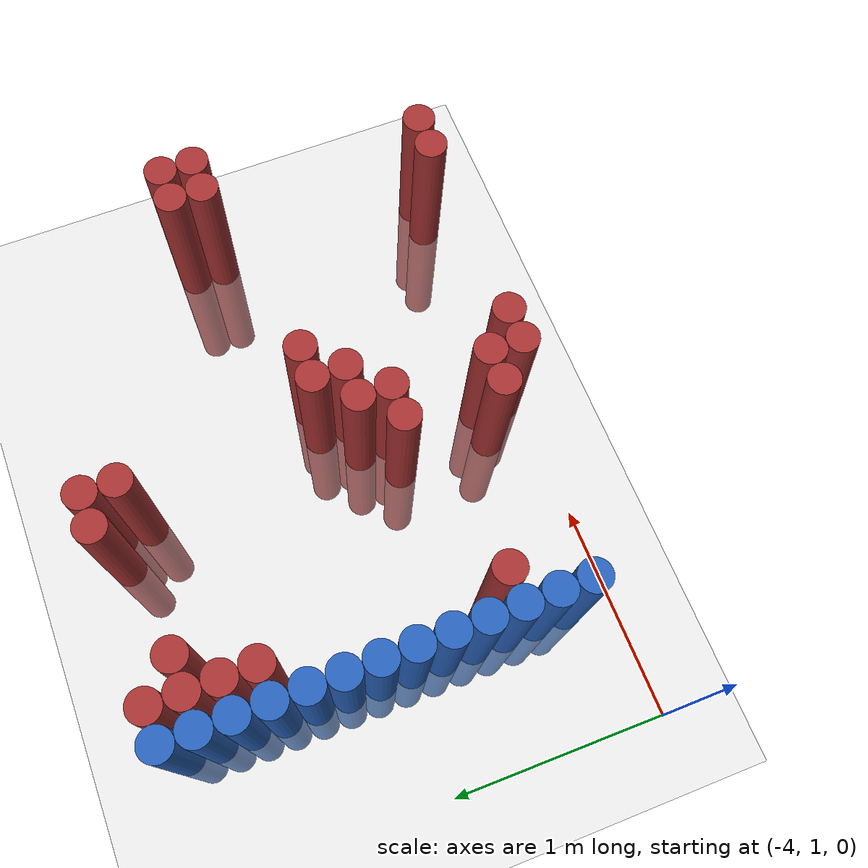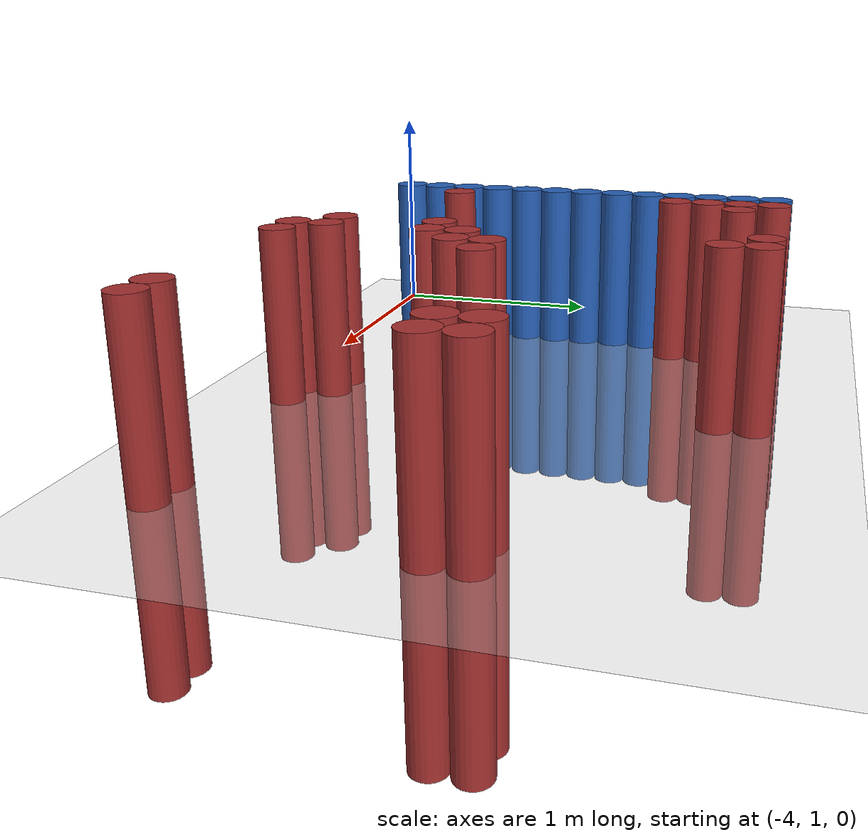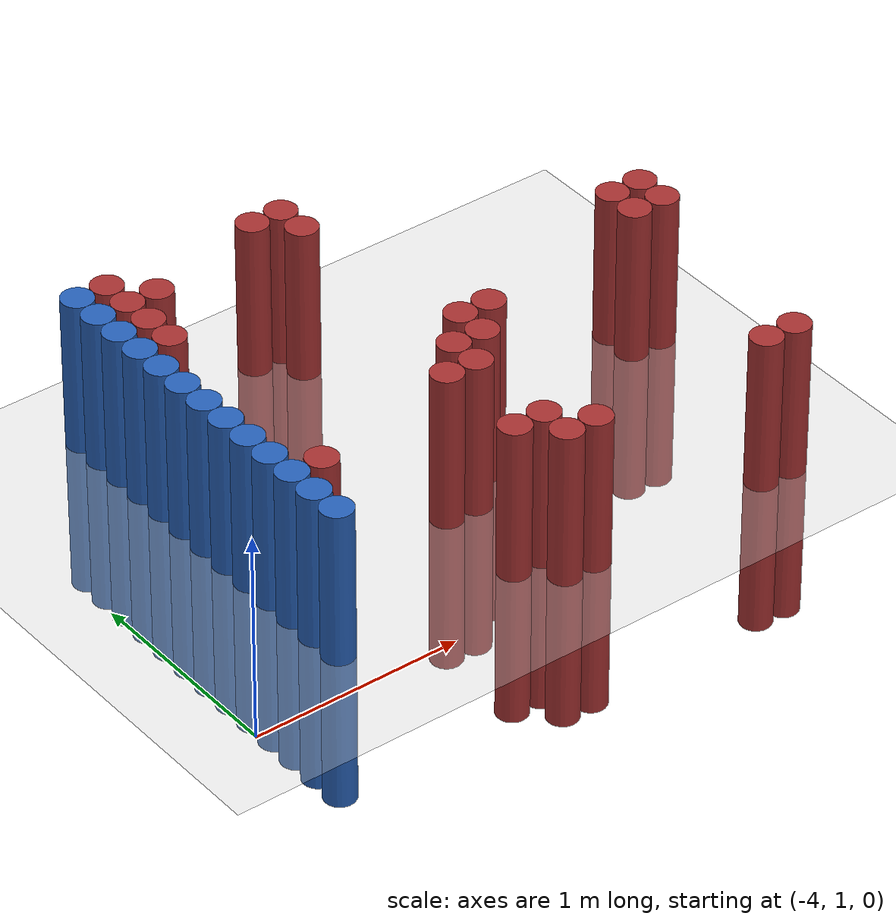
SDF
<sdf version="1.6">
 <world name="default">
  <model name="ground_plane">
   <static>1</static>
   <link name="link">
    <collision name="collision">
     <geometry><plane><normal>0 0 1</normal><size>100 100</size></plane></geometry>
     <surface><friction><ode><mu>100</mu><mu2>50</mu2></ode></friction></surface>
    </collision>
    <visual name="visual">
     <cast_shadows>0</cast_shadows>
     <geometry><plane><normal>0 0 1</normal><size>100 100</size></plane></geometry>
     <material>
      <script><uri>file://media/materials/scripts/gazebo.material</uri><name>Gazebo/Grey</name></script>
     </material>
    </visual>
   </link>
  </model>
  <model name="unit_cylinder_131">
   <static>1</static>
   <pose>-3.425000 1.225000 0.000000 0.000000 0.000000 0.000000</pose>
   <link name="link">
    <inertial>
     <mass>1</mass>
     <inertia><ixx>0.145833</ixx><ixy>0</ixy><ixz>0</ixz><iyy>0.145833</iyy><iyz>0</iyz><izz>0.125</izz></inertia>
    </inertial>
    <collision name="collision">
     <geometry><cylinder><radius>0.075000</radius><length>1.5</length></cylinder></geometry>
    </collision>
    <visual name="visual">
     <geometry><cylinder><radius>0.075000</radius><length>1.5</length></cylinder></geometry>
     <material>
      <ambient>0.152000 0.379000 0.720000 1</ambient>
      <diffuse>0.152000 0.379000 0.720000 1</diffuse>
     </material>
     <material>
      <script><name>Gazebo/Grey</name><uri>file://media/materials/scripts/gazebo.material</uri></script>
     </material>
    </visual>
   </link>
  </model>
  <model name="unit_cylinder_133">
   <static>1</static>
   <pose>-3.425000 1.375000 0.000000 0.000000 0.000000 0.000000</pose>
   <link name="link">
    <inertial>
     <mass>1</mass>
     <inertia><ixx>0.145833</ixx><ixy>0</ixy><ixz>0</ixz><iyy>0.145833</iyy><iyz>0</iyz><izz>0.125</izz></inertia>
    </inertial>
    <collision name="collision">
     <geometry><cylinder><radius>0.075000</radius><length>1.5</length></cylinder></geometry>
    </collision>
    <visual name="visual">
     <geometry><cylinder><radius>0.075000</radius><length>1.5</length></cylinder></geometry>
     <material>
      <ambient>0.152000 0.379000 0.720000 1</ambient>
      <diffuse>0.152000 0.379000 0.720000 1</diffuse>
     </material>
     <material>
      <script><name>Gazebo/Grey</name><uri>file://media/materials/scripts/gazebo.material</uri></script>
     </material>
    </visual>
   </link>
  </model>
  <model name="unit_cylinder_135">
   <static>1</static>
   <pose>-3.425000 1.525000 0.000000 0.000000 0.000000 0.000000</pose>
   <link name="link">
    <inertial>
     <mass>1</mass>
     <inertia><ixx>0.145833</ixx><ixy>0</ixy><ixz>0</ixz><iyy>0.145833</iyy><iyz>0</iyz><izz>0.125</izz></inertia>
    </inertial>
    <collision name="collision">
     <geometry><cylinder><radius>0.075000</radius><length>1.5</length></cylinder></geometry>
    </collision>
    <visual name="visual">
     <geometry><cylinder><radius>0.075000</radius><length>1.5</length></cylinder></geometry>
     <material>
      <ambient>0.152000 0.379000 0.720000 1</ambient>
      <diffuse>0.152000 0.379000 0.720000 1</diffuse>
     </material>
     <material>
      <script><name>Gazebo/Grey</name><uri>file://media/materials/scripts/gazebo.material</uri></script>
     </material>
    </visual>
   </link>
  </model>
  <model name="unit_cylinder_137">
   <static>1</static>
   <pose>-3.425000 1.675000 0.000000 0.000000 0.000000 0.000000</pose>
   <link name="link">
    <inertial>
     <mass>1</mass>
     <inertia><ixx>0.145833</ixx><ixy>0</ixy><ixz>0</ixz><iyy>0.145833</iyy><iyz>0</iyz><izz>0.125</izz></inertia>
    </inertial>
    <collision name="collision">
     <geometry><cylinder><radius>0.075000</radius><length>1.5</length></cylinder></geometry>
    </collision>
    <visual name="visual">
     <geometry><cylinder><radius>0.075000</radius><length>1.5</length></cylinder></geometry>
     <material>
      <ambient>0.152000 0.379000 0.720000 1</ambient>
      <diffuse>0.152000 0.379000 0.720000 1</diffuse>
     </material>
     <material>
      <script><name>Gazebo/Grey</name><uri>file://media/materials/scripts/gazebo.material</uri></script>
     </material>
    </visual>
   </link>
  </model>
  <model name="unit_cylinder_139">
   <static>1</static>
   <pose>-3.425000 1.825000 0.000000 0.000000 0.000000 0.000000</pose>
   <link name="link">
    <inertial>
     <mass>1</mass>
     <inertia><ixx>0.145833</ixx><ixy>0</ixy><ixz>0</ixz><iyy>0.145833</iyy><iyz>0</iyz><izz>0.125</izz></inertia>
    </inertial>
    <collision name="collision">
     <geometry><cylinder><radius>0.075000</radius><length>1.5</length></cylinder></geometry>
    </collision>
    <visual name="visual">
     <geometry><cylinder><radius>0.075000</radius><length>1.5</length></cylinder></geometry>
     <material>
      <ambient>0.152000 0.379000 0.720000 1</ambient>
      <diffuse>0.152000 0.379000 0.720000 1</diffuse>
     </material>
     <material>
      <script><name>Gazebo/Grey</name><uri>file://media/materials/scripts/gazebo.material</uri></script>
     </material>
    </visual>
   </link>
  </model>
  <model name="unit_cylinder_141">
   <static>1</static>
   <pose>-3.425000 1.975000 0.000000 0.000000 0.000000 0.000000</pose>
   <link name="link">
    <inertial>
     <mass>1</mass>
     <inertia><ixx>0.145833</ixx><ixy>0</ixy><ixz>0</ixz><iyy>0.145833</iyy><iyz>0</iyz><izz>0.125</izz></inertia>
    </inertial>
    <collision name="collision">
     <geometry><cylinder><radius>0.075000</radius><length>1.5</length></cylinder></geometry>
    </collision>
    <visual name="visual">
     <geometry><cylinder><radius>0.075000</radius><length>1.5</length></cylinder></geometry>
     <material>
      <ambient>0.152000 0.379000 0.720000 1</ambient>
      <diffuse>0.152000 0.379000 0.720000 1</diffuse>
     </material>
     <material>
      <script><name>Gazebo/Grey</name><uri>file://media/materials/scripts/gazebo.material</uri></script>
     </material>
    </visual>
   </link>
  </model>
  <model name="unit_cylinder_143">
   <static>1</static>
   <pose>-3.425000 2.125000 0.000000 0.000000 0.000000 0.000000</pose>
   <link name="link">
    <inertial>
     <mass>1</mass>
     <inertia><ixx>0.145833</ixx><ixy>0</ixy><ixz>0</ixz><iyy>0.145833</iyy><iyz>0</iyz><izz>0.125</izz></inertia>
    </inertial>
    <collision name="collision">
     <geometry><cylinder><radius>0.075000</radius><length>1.5</length></cylinder></geometry>
    </collision>
    <visual name="visual">
     <geometry><cylinder><radius>0.075000</radius><length>1.5</length></cylinder></geometry>
     <material>
      <ambient>0.152000 0.379000 0.720000 1</ambient>
      <diffuse>0.152000 0.379000 0.720000 1</diffuse>
     </material>
     <material>
      <script><name>Gazebo/Grey</name><uri>file://media/materials/scripts/gazebo.material</uri></script>
     </material>
    </visual>
   </link>
  </model>
  <model name="unit_cylinder_145">
   <static>1</static>
   <pose>-3.425000 2.275000 0.000000 0.000000 0.000000 0.000000</pose>
   <link name="link">
    <inertial>
     <mass>1</mass>
     <inertia><ixx>0.145833</ixx><ixy>0</ixy><ixz>0</ixz><iyy>0.145833</iyy><iyz>0</iyz><izz>0.125</izz></inertia>
    </inertial>
    <collision name="collision">
     <geometry><cylinder><radius>0.075000</radius><length>1.5</length></cylinder></geometry>
    </collision>
    <visual name="visual">
     <geometry><cylinder><radius>0.075000</radius><length>1.5</length></cylinder></geometry>
     <material>
      <ambient>0.152000 0.379000 0.720000 1</ambient>
      <diffuse>0.152000 0.379000 0.720000 1</diffuse>
     </material>
     <material>
      <script><name>Gazebo/Grey</name><uri>file://media/materials/scripts/gazebo.material</uri></script>
     </material>
    </visual>
   </link>
  </model>
  <model name="unit_cylinder_147">
   <static>1</static>
   <pose>-3.425000 2.425000 0.000000 0.000000 0.000000 0.000000</pose>
   <link name="link">
    <inertial>
     <mass>1</mass>
     <inertia><ixx>0.145833</ixx><ixy>0</ixy><ixz>0</ixz><iyy>0.145833</iyy><iyz>0</iyz><izz>0.125</izz></inertia>
    </inertial>
    <collision name="collision">
     <geometry><cylinder><radius>0.075000</radius><length>1.5</length></cylinder></geometry>
    </collision>
    <visual name="visual">
     <geometry><cylinder><radius>0.075000</radius><length>1.5</length></cylinder></geometry>
     <material>
      <ambient>0.152000 0.379000 0.720000 1</ambient>
      <diffuse>0.152000 0.379000 0.720000 1</diffuse>
     </material>
     <material>
      <script><name>Gazebo/Grey</name><uri>file://media/materials/scripts/gazebo.material</uri></script>
     </material>
    </visual>
   </link>
  </model>
  <model name="unit_cylinder_149">
   <static>1</static>
   <pose>-3.425000 2.575000 0.000000 0.000000 0.000000 0.000000</pose>
   <link name="link">
    <inertial>
     <mass>1</mass>
     <inertia><ixx>0.145833</ixx><ixy>0</ixy><ixz>0</ixz><iyy>0.145833</iyy><iyz>0</iyz><izz>0.125</izz></inertia>
    </inertial>
    <collision name="collision">
     <geometry><cylinder><radius>0.075000</radius><length>1.5</length></cylinder></geometry>
    </collision>
    <visual name="visual">
     <geometry><cylinder><radius>0.075000</radius><length>1.5</length></cylinder></geometry>
     <material>
      <ambient>0.152000 0.379000 0.720000 1</ambient>
      <diffuse>0.152000 0.379000 0.720000 1</diffuse>
     </material>
     <material>
      <script><name>Gazebo/Grey</name><uri>file://media/materials/scripts/gazebo.material</uri></script>
     </material>
    </visual>
   </link>
  </model>
  <model name="unit_cylinder_151">
   <static>1</static>
   <pose>-3.425000 2.725000 0.000000 0.000000 0.000000 0.000000</pose>
   <link name="link">
    <inertial>
     <mass>1</mass>
     <inertia><ixx>0.145833</ixx><ixy>0</ixy><ixz>0</ixz><iyy>0.145833</iyy><iyz>0</iyz><izz>0.125</izz></inertia>
    </inertial>
    <collision name="collision">
     <geometry><cylinder><radius>0.075000</radius><length>1.5</length></cylinder></geometry>
    </collision>
    <visual name="visual">
     <geometry><cylinder><radius>0.075000</radius><length>1.5</length></cylinder></geometry>
     <material>
      <ambient>0.152000 0.379000 0.720000 1</ambient>
      <diffuse>0.152000 0.379000 0.720000 1</diffuse>
     </material>
     <material>
      <script><name>Gazebo/Grey</name><uri>file://media/materials/scripts/gazebo.material</uri></script>
     </material>
    </visual>
   </link>
  </model>
  <model name="unit_cylinder_153">
   <static>1</static>
   <pose>-3.425000 2.875000 0.000000 0.000000 0.000000 0.000000</pose>
   <link name="link">
    <inertial>
     <mass>1</mass>
     <inertia><ixx>0.145833</ixx><ixy>0</ixy><ixz>0</ixz><iyy>0.145833</iyy><iyz>0</iyz><izz>0.125</izz></inertia>
    </inertial>
    <collision name="collision">
     <geometry><cylinder><radius>0.075000</radius><length>1.5</length></cylinder></geometry>
    </collision>
    <visual name="visual">
     <geometry><cylinder><radius>0.075000</radius><length>1.5</length></cylinder></geometry>
     <material>
      <ambient>0.152000 0.379000 0.720000 1</ambient>
      <diffuse>0.152000 0.379000 0.720000 1</diffuse>
     </material>
     <material>
      <script><name>Gazebo/Grey</name><uri>file://media/materials/scripts/gazebo.material</uri></script>
     </material>
    </visual>
   </link>
  </model>
  <model name="unit_cylinder_155">
   <static>1</static>
   <pose>-3.425000 3.025000 0.000000 0.000000 0.000000 0.000000</pose>
   <link name="link">
    <inertial>
     <mass>1</mass>
     <inertia><ixx>0.145833</ixx><ixy>0</ixy><ixz>0</ixz><iyy>0.145833</iyy><iyz>0</iyz><izz>0.125</izz></inertia>
    </inertial>
    <collision name="collision">
     <geometry><cylinder><radius>0.075000</radius><length>1.5</length></cylinder></geometry>
    </collision>
    <visual name="visual">
     <geometry><cylinder><radius>0.075000</radius><length>1.5</length></cylinder></geometry>
     <material>
      <ambient>0.152000 0.379000 0.720000 1</ambient>
      <diffuse>0.152000 0.379000 0.720000 1</diffuse>
     </material>
     <material>
      <script><name>Gazebo/Grey</name><uri>file://media/materials/scripts/gazebo.material</uri></script>
     </material>
    </visual>
   </link>
  </model>
  <model name="unit_cylinder_229">
   <static>1</static>
   <pose>-3.425000 1.225000 0.000000 0.000000 0.000000 0.000000</pose>
   <link name="link">
    <inertial>
     <mass>1</mass>
     <inertia><ixx>0.145833</ixx><ixy>0</ixy><ixz>0</ixz><iyy>0.145833</iyy><iyz>0</iyz><izz>0.125</izz></inertia>
    </inertial>
    <collision name="collision">
     <geometry><cylinder><radius>0.075000</radius><length>1.5</length></cylinder></geometry>
    </collision>
    <visual name="visual">
     <geometry><cylinder><radius>0.075000</radius><length>1.5</length></cylinder></geometry>
     <material>
      <ambient>0.152000 0.379000 0.720000 1</ambient>
      <diffuse>0.152000 0.379000 0.720000 1</diffuse>
     </material>
     <material>
      <script><name>Gazebo/Grey</name><uri>file://media/materials/scripts/gazebo.material</uri></script>
     </material>
    </visual>
   </link>
  </model>
  <model name="unit_cylinder_230">
   <static>1</static>
   <pose>-3.425000 1.375000 0.000000 0.000000 0.000000 0.000000</pose>
   <link name="link">
    <inertial>
     <mass>1</mass>
     <inertia><ixx>0.145833</ixx><ixy>0</ixy><ixz>0</ixz><iyy>0.145833</iyy><iyz>0</iyz><izz>0.125</izz></inertia>
    </inertial>
    <collision name="collision">
     <geometry><cylinder><radius>0.075000</radius><length>1.5</length></cylinder></geometry>
    </collision>
    <visual name="visual">
     <geometry><cylinder><radius>0.075000</radius><length>1.5</length></cylinder></geometry>
     <material>
      <ambient>0.152000 0.379000 0.720000 1</ambient>
      <diffuse>0.152000 0.379000 0.720000 1</diffuse>
     </material>
     <material>
      <script><name>Gazebo/Grey</name><uri>file://media/materials/scripts/gazebo.material</uri></script>
     </material>
    </visual>
   </link>
  </model>
  <model name="unit_cylinder_231">
   <static>1</static>
   <pose>-3.425000 1.525000 0.000000 0.000000 0.000000 0.000000</pose>
   <link name="link">
    <inertial>
     <mass>1</mass>
     <inertia><ixx>0.145833</ixx><ixy>0</ixy><ixz>0</ixz><iyy>0.145833</iyy><iyz>0</iyz><izz>0.125</izz></inertia>
    </inertial>
    <collision name="collision">
     <geometry><cylinder><radius>0.075000</radius><length>1.5</length></cylinder></geometry>
    </collision>
    <visual name="visual">
     <geometry><cylinder><radius>0.075000</radius><length>1.5</length></cylinder></geometry>
     <material>
      <ambient>0.152000 0.379000 0.720000 1</ambient>
      <diffuse>0.152000 0.379000 0.720000 1</diffuse>
     </material>
     <material>
      <script><name>Gazebo/Grey</name><uri>file://media/materials/scripts/gazebo.material</uri></script>
     </material>
    </visual>
   </link>
  </model>
  <model name="unit_cylinder_232">
   <static>1</static>
   <pose>-3.425000 1.675000 0.000000 0.000000 0.000000 0.000000</pose>
   <link name="link">
    <inertial>
     <mass>1</mass>
     <inertia><ixx>0.145833</ixx><ixy>0</ixy><ixz>0</ixz><iyy>0.145833</iyy><iyz>0</iyz><izz>0.125</izz></inertia>
    </inertial>
    <collision name="collision">
     <geometry><cylinder><radius>0.075000</radius><length>1.5</length></cylinder></geometry>
    </collision>
    <visual name="visual">
     <geometry><cylinder><radius>0.075000</radius><length>1.5</length></cylinder></geometry>
     <material>
      <ambient>0.152000 0.379000 0.720000 1</ambient>
      <diffuse>0.152000 0.379000 0.720000 1</diffuse>
     </material>
     <material>
      <script><name>Gazebo/Grey</name><uri>file://media/materials/scripts/gazebo.material</uri></script>
     </material>
    </visual>
   </link>
  </model>
  <model name="unit_cylinder_233">
   <static>1</static>
   <pose>-3.425000 1.825000 0.000000 0.000000 0.000000 0.000000</pose>
   <link name="link">
    <inertial>
     <mass>1</mass>
     <inertia><ixx>0.145833</ixx><ixy>0</ixy><ixz>0</ixz><iyy>0.145833</iyy><iyz>0</iyz><izz>0.125</izz></inertia>
    </inertial>
    <collision name="collision">
     <geometry><cylinder><radius>0.075000</radius><length>1.5</length></cylinder></geometry>
    </collision>
    <visual name="visual">
     <geometry><cylinder><radius>0.075000</radius><length>1.5</length></cylinder></geometry>
     <material>
      <ambient>0.152000 0.379000 0.720000 1</ambient>
      <diffuse>0.152000 0.379000 0.720000 1</diffuse>
     </material>
     <material>
      <script><name>Gazebo/Grey</name><uri>file://media/materials/scripts/gazebo.material</uri></script>
     </material>
    </visual>
   </link>
  </model>
  <model name="unit_cylinder_234">
   <static>1</static>
   <pose>-3.425000 1.975000 0.000000 0.000000 0.000000 0.000000</pose>
   <link name="link">
    <inertial>
     <mass>1</mass>
     <inertia><ixx>0.145833</ixx><ixy>0</ixy><ixz>0</ixz><iyy>0.145833</iyy><iyz>0</iyz><izz>0.125</izz></inertia>
    </inertial>
    <collision name="collision">
     <geometry><cylinder><radius>0.075000</radius><length>1.5</length></cylinder></geometry>
    </collision>
    <visual name="visual">
     <geometry><cylinder><radius>0.075000</radius><length>1.5</length></cylinder></geometry>
     <material>
      <ambient>0.152000 0.379000 0.720000 1</ambient>
      <diffuse>0.152000 0.379000 0.720000 1</diffuse>
     </material>
     <material>
      <script><name>Gazebo/Grey</name><uri>file://media/materials/scripts/gazebo.material</uri></script>
     </material>
    </visual>
   </link>
  </model>
  <model name="unit_cylinder_235">
   <static>1</static>
   <pose>-3.425000 2.125000 0.000000 0.000000 0.000000 0.000000</pose>
   <link name="link">
    <inertial>
     <mass>1</mass>
     <inertia><ixx>0.145833</ixx><ixy>0</ixy><ixz>0</ixz><iyy>0.145833</iyy><iyz>0</iyz><izz>0.125</izz></inertia>
    </inertial>
    <collision name="collision">
     <geometry><cylinder><radius>0.075000</radius><length>1.5</length></cylinder></geometry>
    </collision>
    <visual name="visual">
     <geometry><cylinder><radius>0.075000</radius><length>1.5</length></cylinder></geometry>
     <material>
      <ambient>0.152000 0.379000 0.720000 1</ambient>
      <diffuse>0.152000 0.379000 0.720000 1</diffuse>
     </material>
     <material>
      <script><name>Gazebo/Grey</name><uri>file://media/materials/scripts/gazebo.material</uri></script>
     </material>
    </visual>
   </link>
  </model>
  <model name="unit_cylinder_236">
   <static>1</static>
   <pose>-3.425000 2.275000 0.000000 0.000000 0.000000 0.000000</pose>
   <link name="link">
    <inertial>
     <mass>1</mass>
     <inertia><ixx>0.145833</ixx><ixy>0</ixy><ixz>0</ixz><iyy>0.145833</iyy><iyz>0</iyz><izz>0.125</izz></inertia>
    </inertial>
    <collision name="collision">
     <geometry><cylinder><radius>0.075000</radius><length>1.5</length></cylinder></geometry>
    </collision>
    <visual name="visual">
     <geometry><cylinder><radius>0.075000</radius><length>1.5</length></cylinder></geometry>
     <material>
      <ambient>0.152000 0.379000 0.720000 1</ambient>
      <diffuse>0.152000 0.379000 0.720000 1</diffuse>
     </material>
     <material>
      <script><name>Gazebo/Grey</name><uri>file://media/materials/scripts/gazebo.material</uri></script>
     </material>
    </visual>
   </link>
  </model>
  <model name="unit_cylinder_237">
   <static>1</static>
   <pose>-3.425000 2.425000 0.000000 0.000000 0.000000 0.000000</pose>
   <link name="link">
    <inertial>
     <mass>1</mass>
     <inertia><ixx>0.145833</ixx><ixy>0</ixy><ixz>0</ixz><iyy>0.145833</iyy><iyz>0</iyz><izz>0.125</izz></inertia>
    </inertial>
    <collision name="collision">
     <geometry><cylinder><radius>0.075000</radius><length>1.5</length></cylinder></geometry>
    </collision>
    <visual name="visual">
     <geometry><cylinder><radius>0.075000</radius><length>1.5</length></cylinder></geometry>
     <material>
      <ambient>0.152000 0.379000 0.720000 1</ambient>
      <diffuse>0.152000 0.379000 0.720000 1</diffuse>
     </material>
     <material>
      <script><name>Gazebo/Grey</name><uri>file://media/materials/scripts/gazebo.material</uri></script>
     </material>
    </visual>
   </link>
  </model>
  <model name="unit_cylinder_238">
   <static>1</static>
   <pose>-3.425000 2.575000 0.000000 0.000000 0.000000 0.000000</pose>
   <link name="link">
    <inertial>
     <mass>1</mass>
     <inertia><ixx>0.145833</ixx><ixy>0</ixy><ixz>0</ixz><iyy>0.145833</iyy><iyz>0</iyz><izz>0.125</izz></inertia>
    </inertial>
    <collision name="collision">
     <geometry><cylinder><radius>0.075000</radius><length>1.5</length></cylinder></geometry>
    </collision>
    <visual name="visual">
     <geometry><cylinder><radius>0.075000</radius><length>1.5</length></cylinder></geometry>
     <material>
      <ambient>0.152000 0.379000 0.720000 1</ambient>
      <diffuse>0.152000 0.379000 0.720000 1</diffuse>
     </material>
     <material>
      <script><name>Gazebo/Grey</name><uri>file://media/materials/scripts/gazebo.material</uri></script>
     </material>
    </visual>
   </link>
  </model>
  <model name="unit_cylinder_239">
   <static>1</static>
   <pose>-3.425000 2.725000 0.000000 0.000000 0.000000 0.000000</pose>
   <link name="link">
    <inertial>
     <mass>1</mass>
     <inertia><ixx>0.145833</ixx><ixy>0</ixy><ixz>0</ixz><iyy>0.145833</iyy><iyz>0</iyz><izz>0.125</izz></inertia>
    </inertial>
    <collision name="collision">
     <geometry><cylinder><radius>0.075000</radius><length>1.5</length></cylinder></geometry>
    </collision>
    <visual name="visual">
     <geometry><cylinder><radius>0.075000</radius><length>1.5</length></cylinder></geometry>
     <material>
      <ambient>0.152000 0.379000 0.720000 1</ambient>
      <diffuse>0.152000 0.379000 0.720000 1</diffuse>
     </material>
     <material>
      <script><name>Gazebo/Grey</name><uri>file://media/materials/scripts/gazebo.material</uri></script>
     </material>
    </visual>
   </link>
  </model>
  <model name="unit_cylinder_240">
   <static>1</static>
   <pose>-3.425000 2.875000 0.000000 0.000000 0.000000 0.000000</pose>
   <link name="link">
    <inertial>
     <mass>1</mass>
     <inertia><ixx>0.145833</ixx><ixy>0</ixy><ixz>0</ixz><iyy>0.145833</iyy><iyz>0</iyz><izz>0.125</izz></inertia>
    </inertial>
    <collision name="collision">
     <geometry><cylinder><radius>0.075000</radius><length>1.5</length></cylinder></geometry>
    </collision>
    <visual name="visual">
     <geometry><cylinder><radius>0.075000</radius><length>1.5</length></cylinder></geometry>
     <material>
      <ambient>0.152000 0.379000 0.720000 1</ambient>
      <diffuse>0.152000 0.379000 0.720000 1</diffuse>
     </material>
     <material>
      <script><name>Gazebo/Grey</name><uri>file://media/materials/scripts/gazebo.material</uri></script>
     </material>
    </visual>
   </link>
  </model>
  <model name="unit_cylinder_241">
   <static>1</static>
   <pose>-3.425000 3.025000 0.000000 0.000000 0.000000 0.000000</pose>
   <link name="link">
    <inertial>
     <mass>1</mass>
     <inertia><ixx>0.145833</ixx><ixy>0</ixy><ixz>0</ixz><iyy>0.145833</iyy><iyz>0</iyz><izz>0.125</izz></inertia>
    </inertial>
    <collision name="collision">
     <geometry><cylinder><radius>0.075000</radius><length>1.5</length></cylinder></geometry>
    </collision>
    <visual name="visual">
     <geometry><cylinder><radius>0.075000</radius><length>1.5</length></cylinder></geometry>
     <material>
      <ambient>0.152000 0.379000 0.720000 1</ambient>
      <diffuse>0.152000 0.379000 0.720000 1</diffuse>
     </material>
     <material>
      <script><name>Gazebo/Grey</name><uri>file://media/materials/scripts/gazebo.material</uri></script>
     </material>
    </visual>
   </link>
  </model>
  <model name="unit_cylinder_267">
   <static>1</static>
   <pose>-3.275000 1.525000 0.000000 0.000000 0.000000 0.000000</pose>
   <link name="link">
    <inertial>
     <mass>1</mass>
     <inertia><ixx>0.145833</ixx><ixy>0</ixy><ixz>0</ixz><iyy>0.145833</iyy><iyz>0</iyz><izz>0.125</izz></inertia>
    </inertial>
    <collision name="collision">
     <geometry><cylinder><radius>0.075000</radius><length>1.5</length></cylinder></geometry>
    </collision>
    <visual name="visual">
     <geometry><cylinder><radius>0.075000</radius><length>1.5</length></cylinder></geometry>
     <material>
      <ambient>0.648000 0.192000 0.192000 1</ambient>
      <diffuse>0.648000 0.192000 0.192000 1</diffuse>
     </material>
     <material>
      <script><name>Gazebo/Grey</name><uri>file://media/materials/scripts/gazebo.material</uri></script>
     </material>
    </visual>
   </link>
  </model>
  <model name="unit_cylinder_268">
   <static>1</static>
   <pose>-3.275000 2.575000 0.000000 0.000000 0.000000 0.000000</pose>
   <link name="link">
    <inertial>
     <mass>1</mass>
     <inertia><ixx>0.145833</ixx><ixy>0</ixy><ixz>0</ixz><iyy>0.145833</iyy><iyz>0</iyz><izz>0.125</izz></inertia>
    </inertial>
    <collision name="collision">
     <geometry><cylinder><radius>0.075000</radius><length>1.5</length></cylinder></geometry>
    </collision>
    <visual name="visual">
     <geometry><cylinder><radius>0.075000</radius><length>1.5</length></cylinder></geometry>
     <material>
      <ambient>0.648000 0.192000 0.192000 1</ambient>
      <diffuse>0.648000 0.192000 0.192000 1</diffuse>
     </material>
     <material>
      <script><name>Gazebo/Grey</name><uri>file://media/materials/scripts/gazebo.material</uri></script>
     </material>
    </visual>
   </link>
  </model>
  <model name="unit_cylinder_269">
   <static>1</static>
   <pose>-3.275000 2.725000 0.000000 0.000000 0.000000 0.000000</pose>
   <link name="link">
    <inertial>
     <mass>1</mass>
     <inertia><ixx>0.145833</ixx><ixy>0</ixy><ixz>0</ixz><iyy>0.145833</iyy><iyz>0</iyz><izz>0.125</izz></inertia>
    </inertial>
    <collision name="collision">
     <geometry><cylinder><radius>0.075000</radius><length>1.5</length></cylinder></geometry>
    </collision>
    <visual name="visual">
     <geometry><cylinder><radius>0.075000</radius><length>1.5</length></cylinder></geometry>
     <material>
      <ambient>0.648000 0.192000 0.192000 1</ambient>
      <diffuse>0.648000 0.192000 0.192000 1</diffuse>
     </material>
     <material>
      <script><name>Gazebo/Grey</name><uri>file://media/materials/scripts/gazebo.material</uri></script>
     </material>
    </visual>
   </link>
  </model>
  <model name="unit_cylinder_270">
   <static>1</static>
   <pose>-3.275000 2.875000 0.000000 0.000000 0.000000 0.000000</pose>
   <link name="link">
    <inertial>
     <mass>1</mass>
     <inertia><ixx>0.145833</ixx><ixy>0</ixy><ixz>0</ixz><iyy>0.145833</iyy><iyz>0</iyz><izz>0.125</izz></inertia>
    </inertial>
    <collision name="collision">
     <geometry><cylinder><radius>0.075000</radius><length>1.5</length></cylinder></geometry>
    </collision>
    <visual name="visual">
     <geometry><cylinder><radius>0.075000</radius><length>1.5</length></cylinder></geometry>
     <material>
      <ambient>0.648000 0.192000 0.192000 1</ambient>
      <diffuse>0.648000 0.192000 0.192000 1</diffuse>
     </material>
     <material>
      <script><name>Gazebo/Grey</name><uri>file://media/materials/scripts/gazebo.material</uri></script>
     </material>
    </visual>
   </link>
  </model>
  <model name="unit_cylinder_271">
   <static>1</static>
   <pose>-3.275000 3.025000 0.000000 0.000000 0.000000 0.000000</pose>
   <link name="link">
    <inertial>
     <mass>1</mass>
     <inertia><ixx>0.145833</ixx><ixy>0</ixy><ixz>0</ixz><iyy>0.145833</iyy><iyz>0</iyz><izz>0.125</izz></inertia>
    </inertial>
    <collision name="collision">
     <geometry><cylinder><radius>0.075000</radius><length>1.5</length></cylinder></geometry>
    </collision>
    <visual name="visual">
     <geometry><cylinder><radius>0.075000</radius><length>1.5</length></cylinder></geometry>
     <material>
      <ambient>0.648000 0.192000 0.192000 1</ambient>
      <diffuse>0.648000 0.192000 0.192000 1</diffuse>
     </material>
     <material>
      <script><name>Gazebo/Grey</name><uri>file://media/materials/scripts/gazebo.material</uri></script>
     </material>
    </visual>
   </link>
  </model>
  <model name="unit_cylinder_281">
   <static>1</static>
   <pose>-3.125000 2.875000 0.000000 0.000000 0.000000 0.000000</pose>
   <link name="link">
    <inertial>
     <mass>1</mass>
     <inertia><ixx>0.145833</ixx><ixy>0</ixy><ixz>0</ixz><iyy>0.145833</iyy><iyz>0</iyz><izz>0.125</izz></inertia>
    </inertial>
    <collision name="collision">
     <geometry><cylinder><radius>0.075000</radius><length>1.5</length></cylinder></geometry>
    </collision>
    <visual name="visual">
     <geometry><cylinder><radius>0.075000</radius><length>1.5</length></cylinder></geometry>
     <material>
      <ambient>0.648000 0.192000 0.192000 1</ambient>
      <diffuse>0.648000 0.192000 0.192000 1</diffuse>
     </material>
     <material>
      <script><name>Gazebo/Grey</name><uri>file://media/materials/scripts/gazebo.material</uri></script>
     </material>
    </visual>
   </link>
  </model>
  <model name="unit_cylinder_317">
   <static>1</static>
   <pose>-2.525000 1.225000 0.000000 0.000000 0.000000 0.000000</pose>
   <link name="link">
    <inertial>
     <mass>1</mass>
     <inertia><ixx>0.145833</ixx><ixy>0</ixy><ixz>0</ixz><iyy>0.145833</iyy><iyz>0</iyz><izz>0.125</izz></inertia>
    </inertial>
    <collision name="collision">
     <geometry><cylinder><radius>0.075000</radius><length>1.5</length></cylinder></geometry>
    </collision>
    <visual name="visual">
     <geometry><cylinder><radius>0.075000</radius><length>1.5</length></cylinder></geometry>
     <material>
      <ambient>0.648000 0.192000 0.192000 1</ambient>
      <diffuse>0.648000 0.192000 0.192000 1</diffuse>
     </material>
     <material>
      <script><name>Gazebo/Grey</name><uri>file://media/materials/scripts/gazebo.material</uri></script>
     </material>
    </visual>
   </link>
  </model>
  <model name="unit_cylinder_318">
   <static>1</static>
   <pose>-2.525000 1.675000 0.000000 0.000000 0.000000 0.000000</pose>
   <link name="link">
    <inertial>
     <mass>1</mass>
     <inertia><ixx>0.145833</ixx><ixy>0</ixy><ixz>0</ixz><iyy>0.145833</iyy><iyz>0</iyz><izz>0.125</izz></inertia>
    </inertial>
    <collision name="collision">
     <geometry><cylinder><radius>0.075000</radius><length>1.5</length></cylinder></geometry>
    </collision>
    <visual name="visual">
     <geometry><cylinder><radius>0.075000</radius><length>1.5</length></cylinder></geometry>
     <material>
      <ambient>0.648000 0.192000 0.192000 1</ambient>
      <diffuse>0.648000 0.192000 0.192000 1</diffuse>
     </material>
     <material>
      <script><name>Gazebo/Grey</name><uri>file://media/materials/scripts/gazebo.material</uri></script>
     </material>
    </visual>
   </link>
  </model>
  <model name="unit_cylinder_319">
   <static>1</static>
   <pose>-2.525000 3.025000 0.000000 0.000000 0.000000 0.000000</pose>
   <link name="link">
    <inertial>
     <mass>1</mass>
     <inertia><ixx>0.145833</ixx><ixy>0</ixy><ixz>0</ixz><iyy>0.145833</iyy><iyz>0</iyz><izz>0.125</izz></inertia>
    </inertial>
    <collision name="collision">
     <geometry><cylinder><radius>0.075000</radius><length>1.5</length></cylinder></geometry>
    </collision>
    <visual name="visual">
     <geometry><cylinder><radius>0.075000</radius><length>1.5</length></cylinder></geometry>
     <material>
      <ambient>0.648000 0.192000 0.192000 1</ambient>
      <diffuse>0.648000 0.192000 0.192000 1</diffuse>
     </material>
     <material>
      <script><name>Gazebo/Grey</name><uri>file://media/materials/scripts/gazebo.material</uri></script>
     </material>
    </visual>
   </link>
  </model>
  <model name="unit_cylinder_331">
   <static>1</static>
   <pose>-2.375000 1.075000 0.000000 0.000000 0.000000 0.000000</pose>
   <link name="link">
    <inertial>
     <mass>1</mass>
     <inertia><ixx>0.145833</ixx><ixy>0</ixy><ixz>0</ixz><iyy>0.145833</iyy><iyz>0</iyz><izz>0.125</izz></inertia>
    </inertial>
    <collision name="collision">
     <geometry><cylinder><radius>0.075000</radius><length>1.5</length></cylinder></geometry>
    </collision>
    <visual name="visual">
     <geometry><cylinder><radius>0.075000</radius><length>1.5</length></cylinder></geometry>
     <material>
      <ambient>0.648000 0.192000 0.192000 1</ambient>
      <diffuse>0.648000 0.192000 0.192000 1</diffuse>
     </material>
     <material>
      <script><name>Gazebo/Grey</name><uri>file://media/materials/scripts/gazebo.material</uri></script>
     </material>
    </visual>
   </link>
  </model>
  <model name="unit_cylinder_332">
   <static>1</static>
   <pose>-2.375000 1.225000 0.000000 0.000000 0.000000 0.000000</pose>
   <link name="link">
    <inertial>
     <mass>1</mass>
     <inertia><ixx>0.145833</ixx><ixy>0</ixy><ixz>0</ixz><iyy>0.145833</iyy><iyz>0</iyz><izz>0.125</izz></inertia>
    </inertial>
    <collision name="collision">
     <geometry><cylinder><radius>0.075000</radius><length>1.5</length></cylinder></geometry>
    </collision>
    <visual name="visual">
     <geometry><cylinder><radius>0.075000</radius><length>1.5</length></cylinder></geometry>
     <material>
      <ambient>0.648000 0.192000 0.192000 1</ambient>
      <diffuse>0.648000 0.192000 0.192000 1</diffuse>
     </material>
     <material>
      <script><name>Gazebo/Grey</name><uri>file://media/materials/scripts/gazebo.material</uri></script>
     </material>
    </visual>
   </link>
  </model>
  <model name="unit_cylinder_333">
   <static>1</static>
   <pose>-2.375000 1.675000 0.000000 0.000000 0.000000 0.000000</pose>
   <link name="link">
    <inertial>
     <mass>1</mass>
     <inertia><ixx>0.145833</ixx><ixy>0</ixy><ixz>0</ixz><iyy>0.145833</iyy><iyz>0</iyz><izz>0.125</izz></inertia>
    </inertial>
    <collision name="collision">
     <geometry><cylinder><radius>0.075000</radius><length>1.5</length></cylinder></geometry>
    </collision>
    <visual name="visual">
     <geometry><cylinder><radius>0.075000</radius><length>1.5</length></cylinder></geometry>
     <material>
      <ambient>0.648000 0.192000 0.192000 1</ambient>
      <diffuse>0.648000 0.192000 0.192000 1</diffuse>
     </material>
     <material>
      <script><name>Gazebo/Grey</name><uri>file://media/materials/scripts/gazebo.material</uri></script>
     </material>
    </visual>
   </link>
  </model>
  <model name="unit_cylinder_334">
   <static>1</static>
   <pose>-2.375000 1.825000 0.000000 0.000000 0.000000 0.000000</pose>
   <link name="link">
    <inertial>
     <mass>1</mass>
     <inertia><ixx>0.145833</ixx><ixy>0</ixy><ixz>0</ixz><iyy>0.145833</iyy><iyz>0</iyz><izz>0.125</izz></inertia>
    </inertial>
    <collision name="collision">
     <geometry><cylinder><radius>0.075000</radius><length>1.5</length></cylinder></geometry>
    </collision>
    <visual name="visual">
     <geometry><cylinder><radius>0.075000</radius><length>1.5</length></cylinder></geometry>
     <material>
      <ambient>0.648000 0.192000 0.192000 1</ambient>
      <diffuse>0.648000 0.192000 0.192000 1</diffuse>
     </material>
     <material>
      <script><name>Gazebo/Grey</name><uri>file://media/materials/scripts/gazebo.material</uri></script>
     </material>
    </visual>
   </link>
  </model>
  <model name="unit_cylinder_335">
   <static>1</static>
   <pose>-2.375000 2.875000 0.000000 0.000000 0.000000 0.000000</pose>
   <link name="link">
    <inertial>
     <mass>1</mass>
     <inertia><ixx>0.145833</ixx><ixy>0</ixy><ixz>0</ixz><iyy>0.145833</iyy><iyz>0</iyz><izz>0.125</izz></inertia>
    </inertial>
    <collision name="collision">
     <geometry><cylinder><radius>0.075000</radius><length>1.5</length></cylinder></geometry>
    </collision>
    <visual name="visual">
     <geometry><cylinder><radius>0.075000</radius><length>1.5</length></cylinder></geometry>
     <material>
      <ambient>0.648000 0.192000 0.192000 1</ambient>
      <diffuse>0.648000 0.192000 0.192000 1</diffuse>
     </material>
     <material>
      <script><name>Gazebo/Grey</name><uri>file://media/materials/scripts/gazebo.material</uri></script>
     </material>
    </visual>
   </link>
  </model>
  <model name="unit_cylinder_336">
   <static>1</static>
   <pose>-2.375000 3.025000 0.000000 0.000000 0.000000 0.000000</pose>
   <link name="link">
    <inertial>
     <mass>1</mass>
     <inertia><ixx>0.145833</ixx><ixy>0</ixy><ixz>0</ixz><iyy>0.145833</iyy><iyz>0</iyz><izz>0.125</izz></inertia>
    </inertial>
    <collision name="collision">
     <geometry><cylinder><radius>0.075000</radius><length>1.5</length></cylinder></geometry>
    </collision>
    <visual name="visual">
     <geometry><cylinder><radius>0.075000</radius><length>1.5</length></cylinder></geometry>
     <material>
      <ambient>0.648000 0.192000 0.192000 1</ambient>
      <diffuse>0.648000 0.192000 0.192000 1</diffuse>
     </material>
     <material>
      <script><name>Gazebo/Grey</name><uri>file://media/materials/scripts/gazebo.material</uri></script>
     </material>
    </visual>
   </link>
  </model>
  <model name="unit_cylinder_342">
   <static>1</static>
   <pose>-2.225000 1.075000 0.000000 0.000000 0.000000 0.000000</pose>
   <link name="link">
    <inertial>
     <mass>1</mass>
     <inertia><ixx>0.145833</ixx><ixy>0</ixy><ixz>0</ixz><iyy>0.145833</iyy><iyz>0</iyz><izz>0.125</izz></inertia>
    </inertial>
    <collision name="collision">
     <geometry><cylinder><radius>0.075000</radius><length>1.5</length></cylinder></geometry>
    </collision>
    <visual name="visual">
     <geometry><cylinder><radius>0.075000</radius><length>1.5</length></cylinder></geometry>
     <material>
      <ambient>0.648000 0.192000 0.192000 1</ambient>
      <diffuse>0.648000 0.192000 0.192000 1</diffuse>
     </material>
     <material>
      <script><name>Gazebo/Grey</name><uri>file://media/materials/scripts/gazebo.material</uri></script>
     </material>
    </visual>
   </link>
  </model>
  <model name="unit_cylinder_343">
   <static>1</static>
   <pose>-2.225000 1.825000 0.000000 0.000000 0.000000 0.000000</pose>
   <link name="link">
    <inertial>
     <mass>1</mass>
     <inertia><ixx>0.145833</ixx><ixy>0</ixy><ixz>0</ixz><iyy>0.145833</iyy><iyz>0</iyz><izz>0.125</izz></inertia>
    </inertial>
    <collision name="collision">
     <geometry><cylinder><radius>0.075000</radius><length>1.5</length></cylinder></geometry>
    </collision>
    <visual name="visual">
     <geometry><cylinder><radius>0.075000</radius><length>1.5</length></cylinder></geometry>
     <material>
      <ambient>0.648000 0.192000 0.192000 1</ambient>
      <diffuse>0.648000 0.192000 0.192000 1</diffuse>
     </material>
     <material>
      <script><name>Gazebo/Grey</name><uri>file://media/materials/scripts/gazebo.material</uri></script>
     </material>
    </visual>
   </link>
  </model>
  <model name="unit_cylinder_344">
   <static>1</static>
   <pose>-2.225000 1.975000 0.000000 0.000000 0.000000 0.000000</pose>
   <link name="link">
    <inertial>
     <mass>1</mass>
     <inertia><ixx>0.145833</ixx><ixy>0</ixy><ixz>0</ixz><iyy>0.145833</iyy><iyz>0</iyz><izz>0.125</izz></inertia>
    </inertial>
    <collision name="collision">
     <geometry><cylinder><radius>0.075000</radius><length>1.5</length></cylinder></geometry>
    </collision>
    <visual name="visual">
     <geometry><cylinder><radius>0.075000</radius><length>1.5</length></cylinder></geometry>
     <material>
      <ambient>0.648000 0.192000 0.192000 1</ambient>
      <diffuse>0.648000 0.192000 0.192000 1</diffuse>
     </material>
     <material>
      <script><name>Gazebo/Grey</name><uri>file://media/materials/scripts/gazebo.material</uri></script>
     </material>
    </visual>
   </link>
  </model>
  <model name="unit_cylinder_352">
   <static>1</static>
   <pose>-2.075000 1.975000 0.000000 0.000000 0.000000 0.000000</pose>
   <link name="link">
    <inertial>
     <mass>1</mass>
     <inertia><ixx>0.145833</ixx><ixy>0</ixy><ixz>0</ixz><iyy>0.145833</iyy><iyz>0</iyz><izz>0.125</izz></inertia>
    </inertial>
    <collision name="collision">
     <geometry><cylinder><radius>0.075000</radius><length>1.5</length></cylinder></geometry>
    </collision>
    <visual name="visual">
     <geometry><cylinder><radius>0.075000</radius><length>1.5</length></cylinder></geometry>
     <material>
      <ambient>0.648000 0.192000 0.192000 1</ambient>
      <diffuse>0.648000 0.192000 0.192000 1</diffuse>
     </material>
     <material>
      <script><name>Gazebo/Grey</name><uri>file://media/materials/scripts/gazebo.material</uri></script>
     </material>
    </visual>
   </link>
  </model>
  <model name="unit_cylinder_377">
   <static>1</static>
   <pose>-1.325000 1.075000 0.000000 0.000000 0.000000 0.000000</pose>
   <link name="link">
    <inertial>
     <mass>1</mass>
     <inertia><ixx>0.145833</ixx><ixy>0</ixy><ixz>0</ixz><iyy>0.145833</iyy><iyz>0</iyz><izz>0.125</izz></inertia>
    </inertial>
    <collision name="collision">
     <geometry><cylinder><radius>0.075000</radius><length>1.5</length></cylinder></geometry>
    </collision>
    <visual name="visual">
     <geometry><cylinder><radius>0.075000</radius><length>1.5</length></cylinder></geometry>
     <material>
      <ambient>0.648000 0.192000 0.192000 1</ambient>
      <diffuse>0.648000 0.192000 0.192000 1</diffuse>
     </material>
     <material>
      <script><name>Gazebo/Grey</name><uri>file://media/materials/scripts/gazebo.material</uri></script>
     </material>
    </visual>
   </link>
  </model>
  <model name="unit_cylinder_382">
   <static>1</static>
   <pose>-1.175000 1.075000 0.000000 0.000000 0.000000 0.000000</pose>
   <link name="link">
    <inertial>
     <mass>1</mass>
     <inertia><ixx>0.145833</ixx><ixy>0</ixy><ixz>0</ixz><iyy>0.145833</iyy><iyz>0</iyz><izz>0.125</izz></inertia>
    </inertial>
    <collision name="collision">
     <geometry><cylinder><radius>0.075000</radius><length>1.5</length></cylinder></geometry>
    </collision>
    <visual name="visual">
     <geometry><cylinder><radius>0.075000</radius><length>1.5</length></cylinder></geometry>
     <material>
      <ambient>0.648000 0.192000 0.192000 1</ambient>
      <diffuse>0.648000 0.192000 0.192000 1</diffuse>
     </material>
     <material>
      <script><name>Gazebo/Grey</name><uri>file://media/materials/scripts/gazebo.material</uri></script>
     </material>
    </visual>
   </link>
  </model>
  <model name="unit_cylinder_383">
   <static>1</static>
   <pose>-1.175000 2.125000 0.000000 0.000000 0.000000 0.000000</pose>
   <link name="link">
    <inertial>
     <mass>1</mass>
     <inertia><ixx>0.145833</ixx><ixy>0</ixy><ixz>0</ixz><iyy>0.145833</iyy><iyz>0</iyz><izz>0.125</izz></inertia>
    </inertial>
    <collision name="collision">
     <geometry><cylinder><radius>0.075000</radius><length>1.5</length></cylinder></geometry>
    </collision>
    <visual name="visual">
     <geometry><cylinder><radius>0.075000</radius><length>1.5</length></cylinder></geometry>
     <material>
      <ambient>0.648000 0.192000 0.192000 1</ambient>
      <diffuse>0.648000 0.192000 0.192000 1</diffuse>
     </material>
     <material>
      <script><name>Gazebo/Grey</name><uri>file://media/materials/scripts/gazebo.material</uri></script>
     </material>
    </visual>
   </link>
  </model>
  <model name="unit_cylinder_384">
   <static>1</static>
   <pose>-1.175000 2.275000 0.000000 0.000000 0.000000 0.000000</pose>
   <link name="link">
    <inertial>
     <mass>1</mass>
     <inertia><ixx>0.145833</ixx><ixy>0</ixy><ixz>0</ixz><iyy>0.145833</iyy><iyz>0</iyz><izz>0.125</izz></inertia>
    </inertial>
    <collision name="collision">
     <geometry><cylinder><radius>0.075000</radius><length>1.5</length></cylinder></geometry>
    </collision>
    <visual name="visual">
     <geometry><cylinder><radius>0.075000</radius><length>1.5</length></cylinder></geometry>
     <material>
      <ambient>0.648000 0.192000 0.192000 1</ambient>
      <diffuse>0.648000 0.192000 0.192000 1</diffuse>
     </material>
     <material>
      <script><name>Gazebo/Grey</name><uri>file://media/materials/scripts/gazebo.material</uri></script>
     </material>
    </visual>
   </link>
  </model>
  <model name="unit_cylinder_390">
   <static>1</static>
   <pose>-1.025000 2.125000 0.000000 0.000000 0.000000 0.000000</pose>
   <link name="link">
    <inertial>
     <mass>1</mass>
     <inertia><ixx>0.145833</ixx><ixy>0</ixy><ixz>0</ixz><iyy>0.145833</iyy><iyz>0</iyz><izz>0.125</izz></inertia>
    </inertial>
    <collision name="collision">
     <geometry><cylinder><radius>0.075000</radius><length>1.5</length></cylinder></geometry>
    </collision>
    <visual name="visual">
     <geometry><cylinder><radius>0.075000</radius><length>1.5</length></cylinder></geometry>
     <material>
      <ambient>0.648000 0.192000 0.192000 1</ambient>
      <diffuse>0.648000 0.192000 0.192000 1</diffuse>
     </material>
     <material>
      <script><name>Gazebo/Grey</name><uri>file://media/materials/scripts/gazebo.material</uri></script>
     </material>
    </visual>
   </link>
  </model>
  <model name="unit_cylinder_391">
   <static>1</static>
   <pose>-1.025000 2.275000 0.000000 0.000000 0.000000 0.000000</pose>
   <link name="link">
    <inertial>
     <mass>1</mass>
     <inertia><ixx>0.145833</ixx><ixy>0</ixy><ixz>0</ixz><iyy>0.145833</iyy><iyz>0</iyz><izz>0.125</izz></inertia>
    </inertial>
    <collision name="collision">
     <geometry><cylinder><radius>0.075000</radius><length>1.5</length></cylinder></geometry>
    </collision>
    <visual name="visual">
     <geometry><cylinder><radius>0.075000</radius><length>1.5</length></cylinder></geometry>
     <material>
      <ambient>0.648000 0.192000 0.192000 1</ambient>
      <diffuse>0.648000 0.192000 0.192000 1</diffuse>
     </material>
     <material>
      <script><name>Gazebo/Grey</name><uri>file://media/materials/scripts/gazebo.material</uri></script>
     </material>
    </visual>
   </link>
  </model>
 </world>
</sdf>
